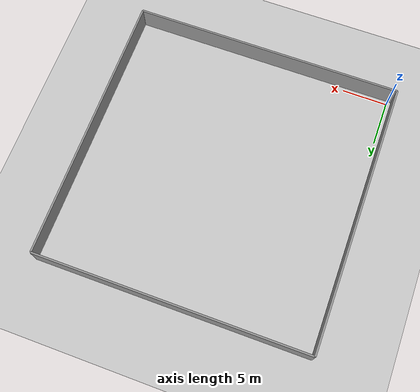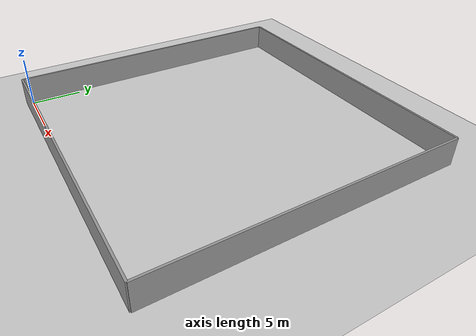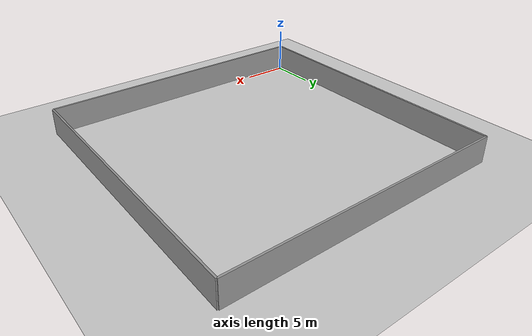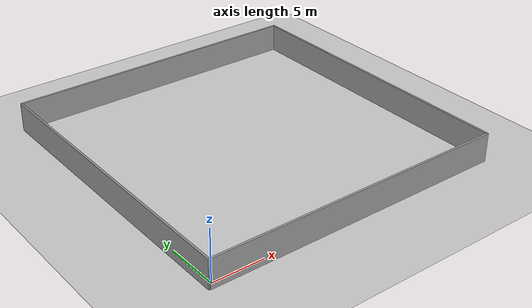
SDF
<?xml version="1.0" ?>

    <!-- this file is auto generated using pedsim_gazebo_plugin pkg -->
    <sdf version="1.5">
      <world name="default">

      <!-- Ground Plane -->

      <include>
        <uri>model://ground_plane</uri>
      </include>

      <include>
        <uri>model://sun</uri>
      </include>

     <model name='grey_wall_1'>
      <static>1</static>
      <link name='link'>

	  <pose frame=''>14.5 -0.5  1.4 0 0 0.0</pose>

        <collision name='collision'>
          <geometry>
            <box>

	     <size> 30.0 .2  2.8 </size>

      	   </box>
          </geometry>
          <max_contacts>10</max_contacts>
          <surface>
            <contact>
              <ode/>
            </contact>
            <bounce/>
            <friction>
              <torsional>
                <ode/>
              </torsional>
              <ode/>
            </friction>
          </surface>
        </collision>
        <visual name='visual'>
          <cast_shadows>0</cast_shadows>
          <geometry>
            <box>

	     <size> 30.0 .2  2.8 </size>

      	   </box>
       </geometry>
          <material>
            <script>
              <uri>model://grey_wall/materials/scripts</uri>
              <uri>model://grey_wall/materials/textures</uri>
              <name>vrc/grey_wall</name>
            </script>
          </material>
        </visual>
        <self_collide>0</self_collide>
        <enable_wind>0</enable_wind>
        <kinematic>0</kinematic>
      </link>
    </model>

     <model name='grey_wall_2'>
      <static>1</static>
      <link name='link'>

	  <pose frame=''>-0.5 14.5  1.4 0 0 1.57</pose>

        <collision name='collision'>
          <geometry>
            <box>

	     <size> 30.0 .2  2.8 </size>

      	   </box>
          </geometry>
          <max_contacts>10</max_contacts>
          <surface>
            <contact>
              <ode/>
            </contact>
            <bounce/>
            <friction>
              <torsional>
                <ode/>
              </torsional>
              <ode/>
            </friction>
          </surface>
        </collision>
        <visual name='visual'>
          <cast_shadows>0</cast_shadows>
          <geometry>
            <box>

	     <size> 30.0 .2  2.8 </size>

      	   </box>
       </geometry>
          <material>
            <script>
              <uri>model://grey_wall/materials/scripts</uri>
              <uri>model://grey_wall/materials/textures</uri>
              <name>vrc/grey_wall</name>
            </script>
          </material>
        </visual>
        <self_collide>0</self_collide>
        <enable_wind>0</enable_wind>
        <kinematic>0</kinematic>
      </link>
    </model>

     <model name='grey_wall_3'>
      <static>1</static>
      <link name='link'>

	  <pose frame=''>14.5 29.5  1.4 0 0 0.0</pose>

        <collision name='collision'>
          <geometry>
            <box>

	     <size> 30.0 .2  2.8 </size>

      	   </box>
          </geometry>
          <max_contacts>10</max_contacts>
          <surface>
            <contact>
              <ode/>
            </contact>
            <bounce/>
            <friction>
              <torsional>
                <ode/>
              </torsional>
              <ode/>
            </friction>
          </surface>
        </collision>
        <visual name='visual'>
          <cast_shadows>0</cast_shadows>
          <geometry>
            <box>

	     <size> 30.0 .2  2.8 </size>

      	   </box>
       </geometry>
          <material>
            <script>
              <uri>model://grey_wall/materials/scripts</uri>
              <uri>model://grey_wall/materials/textures</uri>
              <name>vrc/grey_wall</name>
            </script>
          </material>
        </visual>
        <self_collide>0</self_collide>
        <enable_wind>0</enable_wind>
        <kinematic>0</kinematic>
      </link>
    </model>

     <model name='grey_wall_4'>
      <static>1</static>
      <link name='link'>

	  <pose frame=''>29.5 14.5  1.4 0 0 1.57</pose>

        <collision name='collision'>
          <geometry>
            <box>

	     <size> 30.0 .2  2.8 </size>

      	   </box>
          </geometry>
          <max_contacts>10</max_contacts>
          <surface>
            <contact>
              <ode/>
            </contact>
            <bounce/>
            <friction>
              <torsional>
                <ode/>
              </torsional>
              <ode/>
            </friction>
          </surface>
        </collision>
        <visual name='visual'>
          <cast_shadows>0</cast_shadows>
          <geometry>
            <box>

	     <size> 30.0 .2  2.8 </size>

      	   </box>
       </geometry>
          <material>
            <script>
              <uri>model://grey_wall/materials/scripts</uri>
              <uri>model://grey_wall/materials/textures</uri>
              <name>vrc/grey_wall</name>
            </script>
          </material>
        </visual>
        <self_collide>0</self_collide>
        <enable_wind>0</enable_wind>
        <kinematic>0</kinematic>
      </link>
    </model>

            <plugin name="ActorPosesPlugin" filename="libActorPosesPlugin.so">
        </plugin>

        <plugin name='gazebo_occupancy_map' filename='libgazebo_2Dmap_plugin.so'>
            <map_resolution>0.1</map_resolution> <!-- in meters, optional, default 0.1 -->
            <map_height>0.141</map_height>         <!-- in meters, optional, default 0.3 -->
            <map_size_x>62</map_size_x>          <!-- in meters, optional, default 10 -->
            <map_size_y>62</map_size_y>          <!-- in meters, optional, default 10 -->
            <init_robot_x>0</init_robot_x>          <!-- x coordinate in meters, optional, default 0 -->
            <init_robot_y>0</init_robot_y>          <!-- y coordinate in meters, optional, default 0 -->
        </plugin>

      </world>
    </sdf>
